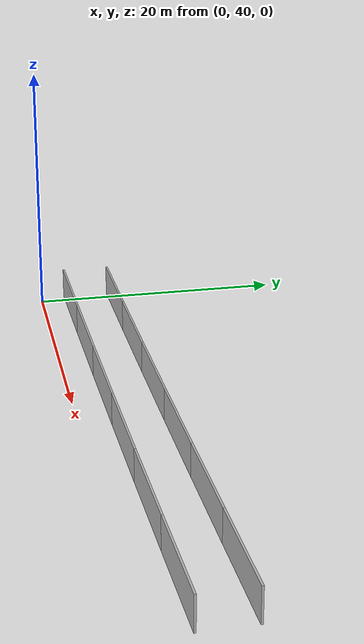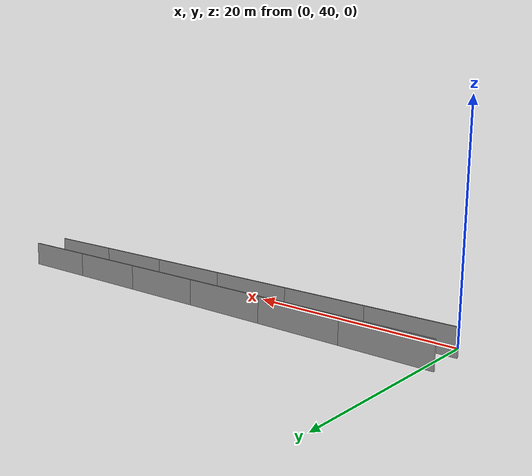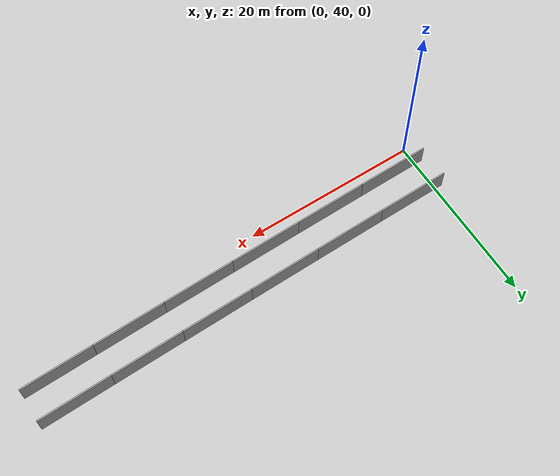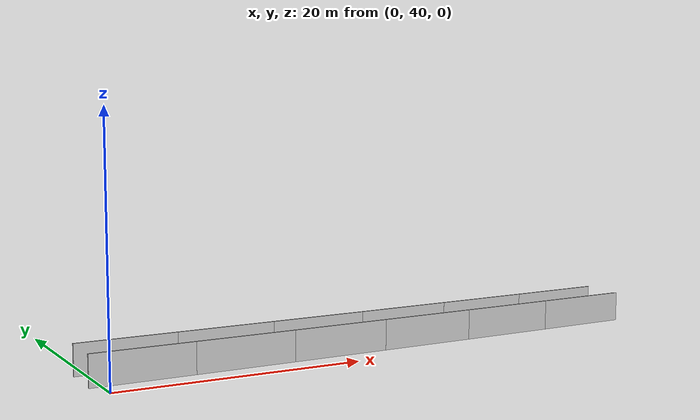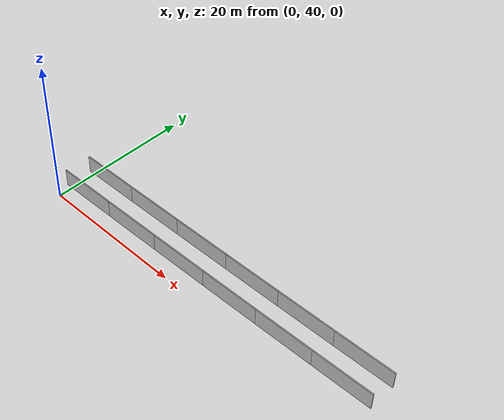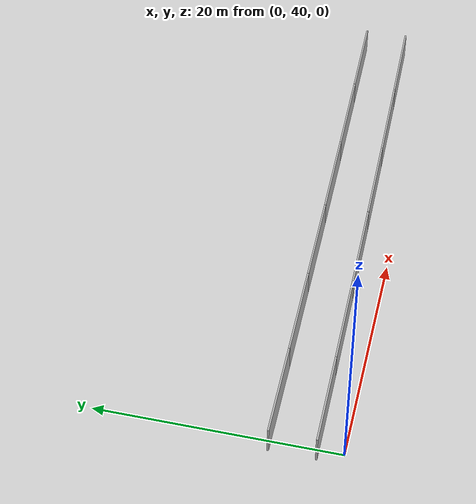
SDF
<?xml version="1.0" ?>
<sdf version="1.6">
  <model name="sps_4501">
    <pose frame="">0 0 0 0 -0 0</pose>
    <static>1</static>
    <self_collide>0</self_collide>
    <allow_auto_disable>0</allow_auto_disable>
    <link name="Wall8932">
      <kinematic>0</kinematic>
      <gravity>1</gravity>
      <self_collide>0</self_collide>
      <collision name="collision">
        <geometry>
          <box>
            <size>8.25193 0.15 2.5</size>
          </box>
        </geometry>
        <pose frame="">0 0 0 0 -0 0</pose>
      </collision>
      <visual name="visual">
        <geometry>
          <box>
            <size>8.25193 0.15 2.5</size>
          </box>
        </geometry>
        <pose frame="">0 0 0 0 -0 0</pose>
        <cast_shadows>1</cast_shadows>
        <transparency>0.0</transparency>
      </visual>
      <pose frame="">3.23006 45.8369 1.25 0 -0 0.0131365</pose>
    </link>
    <link name="Wall8933">
      <kinematic>0</kinematic>
      <gravity>1</gravity>
      <self_collide>0</self_collide>
      <collision name="collision">
        <geometry>
          <box>
            <size>8.25178 0.15 2.5</size>
          </box>
        </geometry>
        <pose frame="">0 0 0 0 -0 0</pose>
      </collision>
      <visual name="visual">
        <geometry>
          <box>
            <size>8.25178 0.15 2.5</size>
          </box>
        </geometry>
        <pose frame="">0 0 0 0 -0 0</pose>
        <cast_shadows>1</cast_shadows>
        <transparency>0.0</transparency>
      </visual>
      <pose frame="">11.4811 45.955 1.25 0 -0 0.0154891</pose>
    </link>
    <link name="Wall8934">
      <kinematic>0</kinematic>
      <gravity>1</gravity>
      <self_collide>0</self_collide>
      <collision name="collision">
        <geometry>
          <box>
            <size>8.25168 0.15 2.5</size>
          </box>
        </geometry>
        <pose frame="">0 0 0 0 -0 0</pose>
      </collision>
      <visual name="visual">
        <geometry>
          <box>
            <size>8.25168 0.15 2.5</size>
          </box>
        </geometry>
        <pose frame="">0 0 0 0 -0 0</pose>
        <cast_shadows>1</cast_shadows>
        <transparency>0.0</transparency>
      </visual>
      <pose frame="">19.7317 46.0925 1.25 0 -0 0.0178418</pose>
    </link>
    <link name="Wall8935">
      <kinematic>0</kinematic>
      <gravity>1</gravity>
      <self_collide>0</self_collide>
      <collision name="collision">
        <geometry>
          <box>
            <size>8.25193 0.15 2.5</size>
          </box>
        </geometry>
        <pose frame="">0 0 0 0 -0 0</pose>
      </collision>
      <visual name="visual">
        <geometry>
          <box>
            <size>8.25193 0.15 2.5</size>
          </box>
        </geometry>
        <pose frame="">0 0 0 0 -0 0</pose>
        <cast_shadows>1</cast_shadows>
        <transparency>0.0</transparency>
      </visual>
      <pose frame="">27.982 46.2495 1.25 0 -0 0.0202159</pose>
    </link>
    <link name="Wall8936">
      <kinematic>0</kinematic>
      <gravity>1</gravity>
      <self_collide>0</self_collide>
      <collision name="collision">
        <geometry>
          <box>
            <size>8.25185 0.15 2.5</size>
          </box>
        </geometry>
        <pose frame="">0 0 0 0 -0 0</pose>
      </collision>
      <visual name="visual">
        <geometry>
          <box>
            <size>8.25185 0.15 2.5</size>
          </box>
        </geometry>
        <pose frame="">0 0 0 0 -0 0</pose>
        <cast_shadows>1</cast_shadows>
        <transparency>0.0</transparency>
      </visual>
      <pose frame="">36.232 46.4259 1.25 0 -0 0.0225392</pose>
    </link>
    <link name="Wall8937">
      <kinematic>0</kinematic>
      <gravity>1</gravity>
      <self_collide>0</self_collide>
      <collision name="collision">
        <geometry>
          <box>
            <size>8.25177 0.15 2.5</size>
          </box>
        </geometry>
        <pose frame="">0 0 0 0 -0 0</pose>
      </collision>
      <visual name="visual">
        <geometry>
          <box>
            <size>8.25177 0.15 2.5</size>
          </box>
        </geometry>
        <pose frame="">0 0 0 0 -0 0</pose>
        <cast_shadows>1</cast_shadows>
        <transparency>0.0</transparency>
      </visual>
      <pose frame="">44.4814 46.6218 1.25 0 -0 0.024944</pose>
    </link>
    <link name="Wall9023">
      <kinematic>0</kinematic>
      <gravity>1</gravity>
      <self_collide>0</self_collide>
      <collision name="collision">
        <geometry>
          <box>
            <size>8.2617 0.15 2.5</size>
          </box>
        </geometry>
        <pose frame="">0 0 0 0 -0 0</pose>
      </collision>
      <visual name="visual">
        <geometry>
          <box>
            <size>8.2617 0.15 2.5</size>
          </box>
        </geometry>
        <pose frame="">0 0 0 0 -0 0</pose>
        <cast_shadows>1</cast_shadows>
        <transparency>0.0</transparency>
      </visual>
      <pose frame="">3.20473 42.0796 1.25 0 -0 0.0130988</pose>
    </link>
    <link name="Wall9024">
      <kinematic>0</kinematic>
      <gravity>1</gravity>
      <self_collide>0</self_collide>
      <collision name="collision">
        <geometry>
          <box>
            <size>8.26179 0.15 2.5</size>
          </box>
        </geometry>
        <pose frame="">0 0 0 0 -0 0</pose>
      </collision>
      <visual name="visual">
        <geometry>
          <box>
            <size>8.26179 0.15 2.5</size>
          </box>
        </geometry>
        <pose frame="">0 0 0 0 -0 0</pose>
        <cast_shadows>1</cast_shadows>
        <transparency>0.0</transparency>
      </visual>
      <pose frame="">11.4656 42.1976 1.25 0 -0 0.0154703</pose>
    </link>
    <link name="Wall9025">
      <kinematic>0</kinematic>
      <gravity>1</gravity>
      <self_collide>0</self_collide>
      <collision name="collision">
        <geometry>
          <box>
            <size>8.26175 0.15 2.5</size>
          </box>
        </geometry>
        <pose frame="">0 0 0 0 -0 0</pose>
      </collision>
      <visual name="visual">
        <geometry>
          <box>
            <size>8.26175 0.15 2.5</size>
          </box>
        </geometry>
        <pose frame="">0 0 0 0 -0 0</pose>
        <cast_shadows>1</cast_shadows>
        <transparency>0.0</transparency>
      </visual>
      <pose frame="">19.7262 42.3351 1.25 0 -0 0.01782</pose>
    </link>
    <link name="Wall9026">
      <kinematic>0</kinematic>
      <gravity>1</gravity>
      <self_collide>0</self_collide>
      <collision name="collision">
        <geometry>
          <box>
            <size>8.26188 0.15 2.5</size>
          </box>
        </geometry>
        <pose frame="">0 0 0 0 -0 0</pose>
      </collision>
      <visual name="visual">
        <geometry>
          <box>
            <size>8.26188 0.15 2.5</size>
          </box>
        </geometry>
        <pose frame="">0 0 0 0 -0 0</pose>
        <cast_shadows>1</cast_shadows>
        <transparency>0.0</transparency>
      </visual>
      <pose frame="">27.9866 42.4921 1.25 0 -0 0.0201916</pose>
    </link>
    <link name="Wall9027">
      <kinematic>0</kinematic>
      <gravity>1</gravity>
      <self_collide>0</self_collide>
      <collision name="collision">
        <geometry>
          <box>
            <size>8.26168 0.15 2.5</size>
          </box>
        </geometry>
        <pose frame="">0 0 0 0 -0 0</pose>
      </collision>
      <visual name="visual">
        <geometry>
          <box>
            <size>8.26168 0.15 2.5</size>
          </box>
        </geometry>
        <pose frame="">0 0 0 0 -0 0</pose>
        <cast_shadows>1</cast_shadows>
        <transparency>0.0</transparency>
      </visual>
      <pose frame="">36.2465 42.6686 1.25 0 -0 0.0225345</pose>
    </link>
    <link name="Wall9028">
      <kinematic>0</kinematic>
      <gravity>1</gravity>
      <self_collide>0</self_collide>
      <collision name="collision">
        <geometry>
          <box>
            <size>8.26197 0.15 2.5</size>
          </box>
        </geometry>
        <pose frame="">0 0 0 0 -0 0</pose>
      </collision>
      <visual name="visual">
        <geometry>
          <box>
            <size>8.26197 0.15 2.5</size>
          </box>
        </geometry>
        <pose frame="">0 0 0 0 -0 0</pose>
        <cast_shadows>1</cast_shadows>
        <transparency>0.0</transparency>
      </visual>
      <pose frame="">44.5059 42.8647 1.25 0 -0 0.0249353</pose>
    </link>
  </model>
</sdf>
